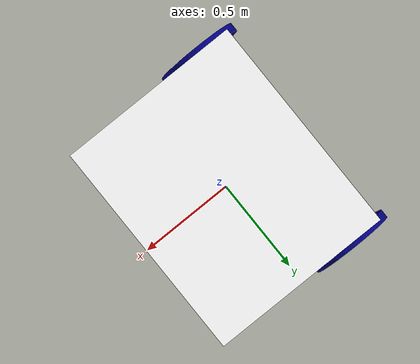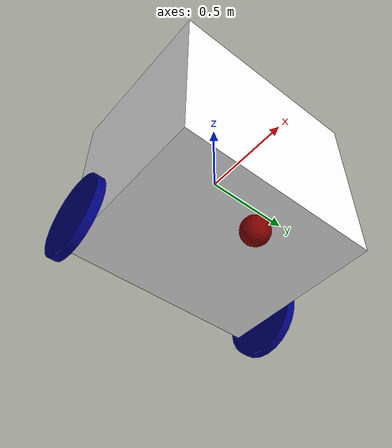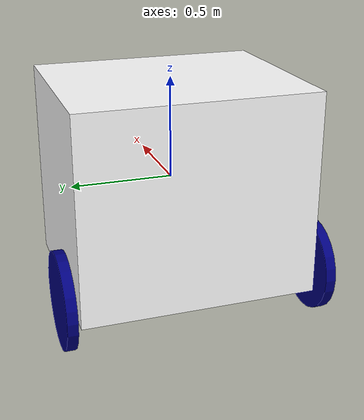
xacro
<?xml version="1.0"?>
<robot xmlns:xacro="http://www.ros.org/wiki/xacro" name="navros">
    <xacro:include filename="ros2_control.xacro"/>
    <xacro:include filename="common_properties.xacro"/>
    <xacro:include filename="navros_base.xacro"/>
    <xacro:include filename="camera.xacro" />
</robot>

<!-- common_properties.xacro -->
<robot xmlns:xacro="http://www.ros.org/wiki/xacro">

    <!-- Colors - Red, Green, Blue, White -->

    <material name="white">
        <color rgba="1 1 1 1" />
    </material>

    <material name="blue">
        <color rgba="0 0 0.5 1" />
    </material>

    <material name="green">
        <color rgba="0 0.5 0 1" />
    </material>

    <material name="red">
        <color rgba="0.5 0 0 1" />
    </material>

    <xacro:macro name="box_inertia" params="m l w h xyz rpy" >
        <inertial>
            <origin xyz="${xyz}" rpy="${rpy}" />
            <mass value="${m}"  />
            <inertia ixx="${(m/12) * (h*h + l*l)}" ixy="0.0" ixz="0.0"
                     iyy="${(m/12) * (w*w + l*l)}" iyz="0.0"
                     izz="${(m/12) * (w*w + h*h)}"/>
        </inertial>
    </xacro:macro>

    <xacro:macro name="cylinder_inertia" params="m r h xyz rpy" >
        <inertial>
            <origin xyz="${xyz}" rpy="${rpy}" />
            <mass value="${m}"  />
            <inertia ixx="${(m/12) * (3*r*r + h*h)}" ixy="0.0" ixz="0.0"
                     iyy="${(m/12) * (3*r*r + h*h)}" iyz="0.0"
                     izz="${(m/2) * (r*r)}"/>
        </inertial>
    </xacro:macro>

    <xacro:macro name="sphere_inertia" params="m r xyz rpy" >
        <inertial>
            <origin xyz="${xyz}" rpy="${rpy}" />
            <mass value="${m}"  />
            <inertia ixx="${2/5 * (m * r * r)}" ixy="0.0" ixz="0.0"
                     iyy="${2/5 * (m * r * r)}" iyz="0.0"
                     izz="${2/5 * (m * r * r)}"/>
        </inertial>
    </xacro:macro>

</robot>

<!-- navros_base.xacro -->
<robot xmlns:xacro="http://www.ros.org/wiki/xacro">

    <!-- scaled down by 0.1 -->
    <!-- Original Values -->
    <!-- Base Lenght - 200 -->
    <!-- Base Width - 150 -->
    <!-- Base Height - 60 -->
    <!-- Wheel Radius - 35 -->
    <!-- Wheel Height - 10 -->

    <xacro:property name="base_length" value="0.94"/>
    <xacro:property name="base_width" value="1.14"/>
    <xacro:property name="base_height" value="0.99"/>
    <xacro:property name="wheel_radius" value="0.23"/>
    <xacro:property name="wheel_length" value="0.05"/>
    <xacro:property name="sphere_radius" value="0.075"/>

    <link name="base_footprint"/>

    <link name="base_link">
        <visual>
            <geometry>
                <box size="${base_length} ${base_width} ${base_height}"/>
            </geometry>
            <origin xyz="0 0 0" rpy="0 0 0"/>
            <material name="white" />
        </visual>
        <collision>
            <geometry>
                <box size="${base_length} ${base_width} ${base_height}"/>
            </geometry>
            <origin xyz="0 0 0" rpy="0 0 0" />
        </collision>
        <xacro:box_inertia m="4.0"
                        l="${base_length}" w="${base_width}" h="${base_height}"
                        xyz="0 0 0" rpy="0 0 0" />
    </link>

    <xacro:macro name="wheel_link" params="prefix" >
        <link name="${prefix}_wheel_link">
            <visual>
                <geometry>
                    <cylinder radius="${wheel_radius}" length="${wheel_length}"/>
                </geometry>
                <origin xyz="0 0 0" rpy="${pi /2} 0 0"/>
            <material name="blue" />
            </visual>
            <collision>
                <geometry>
                    <cylinder radius="${wheel_radius}" length="${wheel_length}"/>
                </geometry>
                <origin xyz="0 0 0" rpy="${pi /2} 0 0" />
            </collision>
            <xacro:cylinder_inertia m="1.0" r="${2 * wheel_radius}" h="${2 * wheel_length}"
                                    xyz="0 0 0" rpy="${pi /2} 0 0" />
        </link>
    </xacro:macro>

    <xacro:wheel_link prefix="right"/>
    <xacro:wheel_link prefix="left"/>

    <link name="caster_wheel">
        <visual>
                <geometry>
                    <sphere radius="${sphere_radius}"/>
                </geometry>
                <origin xyz="0 0 0" rpy="0 0 0"/>
                <material name="red"/>
        </visual>
        <collision>
            <geometry>
                <sphere radius="${sphere_radius}" />
            </geometry>
            <origin xyz="0 0 0" rpy="0 0 0" />
        </collision>
        <xacro:sphere_inertia m="0.5" r="${2 * wheel_radius / 2.0}"
                            xyz="0 0 0" rpy="0 0 0" />
    </link>

    <joint name="base_joint" type="fixed">
        <parent link="base_footprint"/>
        <child link="base_link"/>
        <origin xyz="0 0 0" rpy="0 0 0"/>
    </joint>

    <joint name="base_caster_wheel_joint" type="fixed">
        <parent link="base_link"/>
        <child link="caster_wheel"/>
        <origin xyz="${base_length/2 - 0.11 - 0.0882} 0 -${base_height/2 + 0.075}" rpy="0 0 0"/>
    </joint>

    <joint name="base_right_wheel_joint" type="continuous">
        <parent link="base_link"/>
        <child link="right_wheel_link"/>
        <!-- By changing the Y value, the wheel will be defined for either right or left -->
        <origin xyz="${-(base_length/2)+ 0.15} -${(base_width/2) + 0.05} ${-(base_height/2) + 0.08}" rpy="0 0 0"/>
        <axis xyz="0 1 0"/>
    </joint>

    <joint name="base_left_wheel_joint" type="continuous">
        <parent link="base_link"/>
        <child link="left_wheel_link"/>
        <!-- By changing the Y value, the wheel will be defined for either right or left -->
        <origin xyz="${-(base_length/2)+ 0.15} ${(base_width/2) + 0.05} ${-(base_height/2) + 0.08}" rpy="0 0 0"/>
        <axis xyz="0 1 0"/>
    </joint>

<!-- ${(base_length / 2) + 0.2441} -->
</robot>
